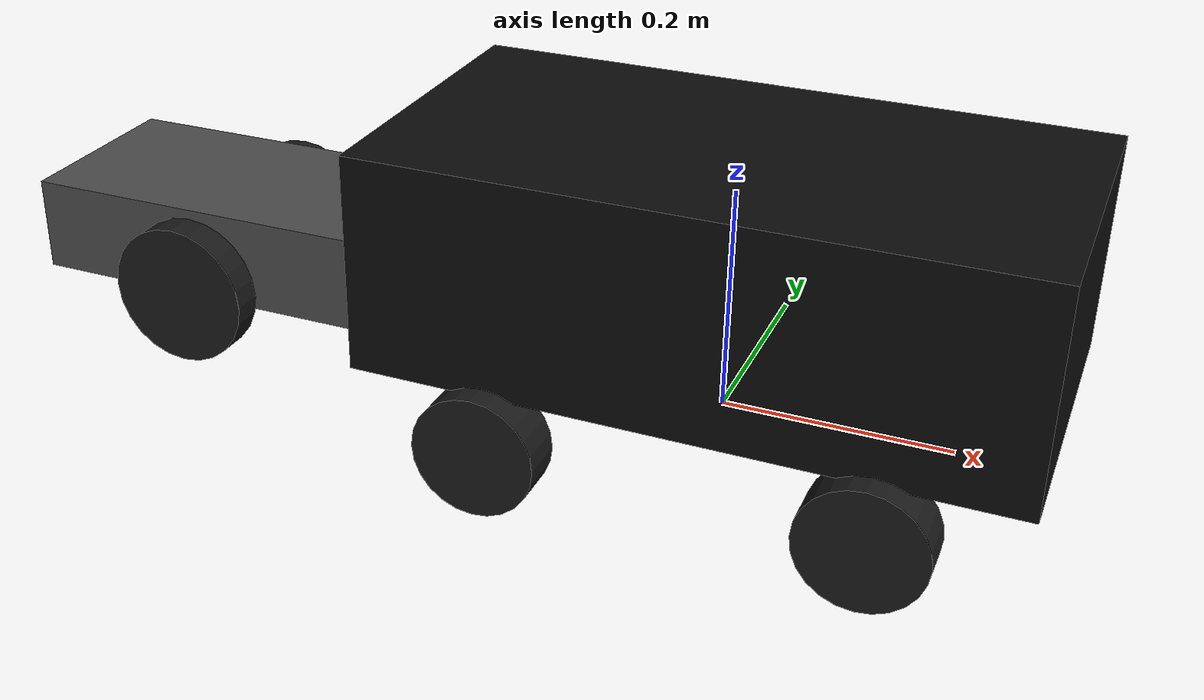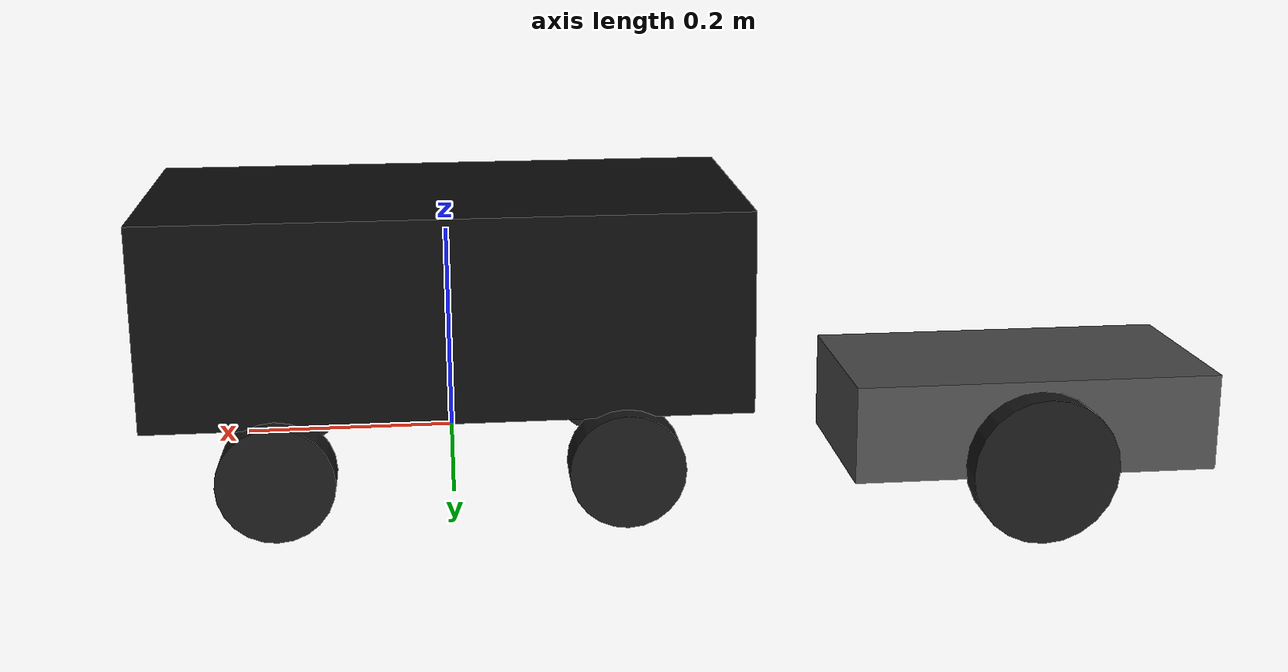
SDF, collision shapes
<?xml version="1.0"?>
<sdf version="1.8">
  <model name="traxxas">
    <self_collide>false</self_collide>
    <static>false</static>

    <link name="base_link">
      <gz_frame_id>traxxas/base_link</gz_frame_id>

      <inertial>
        <pose>0 0 0 0 0 0</pose>
        <!-- [MEDIR_3] Massa total com eletrônicos -->
        <!-- stock 2.28kg + Raspberry ~0.1kg + LiDAR ~0.17kg + controladora ~0.1kg + bateria ~0.3kg = ~3.0kg -->
        <mass>8.0</mass>
        <!-- Inércia caixa 0.568 x 0.296 x 0.193, m=3.0kg -->
        <!-- Ixx=(1/12)*3.0*(0.193²+0.296²) = 0.0310 -->
        <!-- Iyy=(1/12)*3.0*(0.568²+0.193²) = 0.0903 -->
        <!-- Izz=(1/12)*3.0*(0.568²+0.296²) = 0.1027 -->
        <inertia>
          <ixx>0.0310</ixx>
          <ixy>0</ixy>
          <ixz>0</ixz>
          <iyy>0.0903</iyy>
          <iyz>0</iyz>
          <izz>0.1027</izz>
        </inertia>
      </inertial>

      <!-- Colisão baseada nas dimensões reais -->
      <collision name="traxxas/BaseCollision">
        <!-- z = ground_clearance + height/2 = 0.047 + 0.0965 = 0.1435 -->
        <pose>0 0 0.1435 0 0 0</pose>
        <geometry>
          <box>
            <size>0.568 0.296 0.193</size>
          </box>
        </geometry>
        <surface>
          <friction>
            <ode>
              <!-- [MEDIR_4] -->
              <mu>0.5</mu>
              <mu2>0.5</mu2>
            </ode>
          </friction>
        </surface>
      </collision>

      <!-- ===== VISUAIS ===== -->

      <visual name="traxxas/CarroInteiroVisual">
        <pose>
        -0.35 -0.18 -0.1 1.5708 0 1.5708
        </pose>
        <geometry>
          <mesh>
            <uri>file:///home/lauraluna/ackermann_sim/src/ackermann-vehicle-gzsim-ros2/saye_description/models/traxxas/meshes/Traxxas_Nitro_Rustler.stl</uri>
            <scale>0.0015 0.0015 0.0015</scale>
          </mesh>
        </geometry>
        <material>
          <ambient>0.05 0.05 0.05 1</ambient>
          <diffuse>0.05 0.05 0.05 1</diffuse>
          <specular>0.2 0.2 0.2 1</specular>
        </material>
      </visual>

      <visual name="traxxas/LidarVisual">
        <pose>0.035 0.1 0.16 0 0 0</pose>
        <geometry>
          <cylinder><radius>0.038</radius><length>0.040</length></cylinder>
        </geometry>
        <material>
          <ambient>0.05 0.05 0.05 1</ambient>
          <diffuse>0.05 0.05 0.05 1</diffuse>
        </material>
      </visual>

      <!-- ===== SENSORES ===== -->

      <!-- IMU -->
      <sensor name="imu_sensor" type="imu">
        <always_on>1</always_on>
        <update_rate>250</update_rate>
        <topic>imu</topic>
        <imu>
          <enable_orientation>1</enable_orientation>
          <angular_velocity>
            <x><noise type="gaussian"><mean>0</mean><stddev>0.009</stddev><bias_mean>0.00075</bias_mean><bias_stddev>0.005</bias_stddev></noise></x>
            <y><noise type="gaussian"><mean>0</mean><stddev>0.009</stddev><bias_mean>0.00075</bias_mean><bias_stddev>0.005</bias_stddev></noise></y>
            <z><noise type="gaussian"><mean>0</mean><stddev>0.009</stddev><bias_mean>0.00075</bias_mean><bias_stddev>0.005</bias_stddev></noise></z>
          </angular_velocity>
          <linear_acceleration>
            <x><noise type="gaussian"><mean>0</mean><stddev>0.021</stddev><bias_mean>0.05</bias_mean><bias_stddev>0.0075</bias_stddev></noise></x>
            <y><noise type="gaussian"><mean>0</mean><stddev>0.021</stddev><bias_mean>0.05</bias_mean><bias_stddev>0.0075</bias_stddev></noise></y>
            <z><noise type="gaussian"><mean>0</mean><stddev>0.021</stddev><bias_mean>0.05</bias_mean><bias_stddev>0.0075</bias_stddev></noise></z>
          </linear_acceleration>
        </imu>
      </sensor>

      <!-- RPLidar C1 — 2D, 360°, 10Hz, 0.1–12m -->
      <!-- [MEDIR_1] z=0.228 estimado — medir altura real -->
      <sensor name="rplidar_c1" type="gpu_lidar">
        <pose>0 0 0.228 0 0 0</pose>
        <lidar>
          <scan>
            <horizontal>
              <samples>2400</samples>
              <resolution>1</resolution>
              <min_angle>-3.14159</min_angle>
              <max_angle>3.14159</max_angle>
            </horizontal>
            <vertical>
              <samples>1</samples>
              <resolution>1</resolution>
              <min_angle>0</min_angle>
              <max_angle>0</max_angle>
            </vertical>
          </scan>
          <range>
            <min>0.1</min>
            <max>12.0</max>
            <resolution>0.01</resolution>
          </range>
          <noise>
            <type>gaussian</type>
            <mean>0</mean>
            <stddev>0.01</stddev>
          </noise>
        </lidar>
        <gz_frame_id>traxxas/base_link/rplidar_c1</gz_frame_id>
        <topic>scan</topic>
        <visualize>true</visualize>
        <update_rate>10</update_rate>
      </sensor>

      <sensor name="realsense_d435" type="rgbd_camera">
        <pose>0.284 0 0.120 0 0 0</pose>
        <always_on>1</always_on>
        <update_rate>30</update_rate>
        <topic>realsense</topic>
        <gz_frame_id>traxxas/base_link/realsense_d435</gz_frame_id>
        <camera>
          <!-- RGB -->
          <horizontal_fov>1.5184</horizontal_fov>  <!-- 87° FOV da D435 -->
          <image>
            <width>640</width>
            <height>480</height>
            <format>RGB_INT8</format>
          </image>
          <!-- Profundidade -->
          <clip>
            <near>0.105</near>   <!-- mínimo D435: 10.5cm -->
            <far>10.0</far>      <!-- máximo prático: 10m -->
          </clip>
          <depth_camera>
            <output>depths</output>
          </depth_camera>
          <noise>
            <type>gaussian</type>
            <mean>0</mean>
            <stddev>0.005</stddev>
          </noise>
        </camera>
      </sensor>

    </link>

    <!-- ===== RODAS DIANTEIRAS ===== -->
    <!-- Traxxas: raio = 109.5mm/2 = 54.75mm, largura estimada ~43mm -->

    <link name="front_left_wheel_link">
      <pose relative_to="front_left_wheel_joint">0 0 0 0 0 0</pose>
      <inertial>
        <mass>0.15</mass>
        <inertia>
          <ixx>0.000120</ixx><ixy>0</ixy><ixz>0</ixz>
          <iyy>0.000120</iyy><iyz>0</iyz>
          <izz>0.000225</izz>
        </inertia>
      </inertial>
      <gravity>true</gravity>
      <visual name="traxxas/FrontLeftWheelVisual">
        <transparency>1</transparency>
        <pose>0 0 0 -1.5707 0 0</pose>
        <geometry>
          <cylinder><radius>0.05475</radius><length>0.043</length></cylinder>
        </geometry>
        <material>
          <ambient>0.1 0.1 0.1 1</ambient>
          <diffuse>0.1 0.1 0.1 1</diffuse>
        </material>
      </visual>
      <collision name="traxxas/FrontLeftWheelCollision">
        <pose>0 0 0 -1.5707 0 0</pose>
        <geometry>
          <cylinder><radius>0.05475</radius><length>0.043</length></cylinder>
        </geometry>
        <surface>
          <friction>
            <ode>
              <!-- [MEDIR_4] -->
              <mu>0.8</mu><mu2>1.2</mu2>
              <fdir1>0 0 1</fdir1>
            </ode>
          </friction>
        </surface>
      </collision>
    </link>

    <link name="front_left_wheel_steering_link">
      <pose relative_to="front_left_wheel_steering_joint">0 0 0 0 0 0</pose>
      <inertial>
        <mass>0.01</mass>
        <inertia><ixx>0.000004</ixx><iyy>0.000004</iyy><izz>0.000004</izz></inertia>
      </inertial>
    </link>

    <joint name="front_left_wheel_joint" type="revolute">
      <parent>front_left_wheel_steering_link</parent>
      <child>front_left_wheel_link</child>
      <pose relative_to="front_left_wheel_steering_joint">0 0 0 0 0 0</pose>
      <axis>
        <xyz>0 1 0</xyz>
        <limit><lower>-1.79769e+308</lower><upper>1.79769e+308</upper></limit>
        <dynamics><spring_reference>0</spring_reference><spring_stiffness>0</spring_stiffness></dynamics>
        <use_parent_model_frame>1</use_parent_model_frame>
      </axis>
    </joint>

    <!-- ===== SUSPENSÃO DIANTEIRA ESQUERDA ===== -->
    <link name="front_left_suspension_link">
      <pose relative_to="front_left_suspension_joint">0 0 0 0 0 0</pose>
      <inertial>
        <mass>0.02</mass>
        <inertia><ixx>0.000002</ixx><iyy>0.000002</iyy><izz>0.000002</izz></inertia>
      </inertial>
    </link>

    <joint name="front_left_suspension_joint" type="prismatic">
      <parent>base_link</parent>
      <child>front_left_suspension_link</child>
      <!-- x = wheelbase/2 = 0.162, y = track/2 = 0.148 -->
      <pose relative_to="base_link">0.162 0.148 0 0 0 0</pose>
      <axis>
        <xyz>0 0 1</xyz>
        <limit>
          <!-- [MEDIR_SUSP_1] curso do amortecedor real (Traxxas ~10-15mm) -->
          <lower>-0.015</lower>
          <upper>0.015</upper>
          <velocity>2.0</velocity>
          <effort>50</effort>
        </limit>
        <dynamics>
          <!-- [MEDIR_SUSP_2] calibrar com massa real por roda -->
          <damping>18.0</damping>
          <spring_stiffness>800</spring_stiffness>
          <spring_reference>0</spring_reference>
        </dynamics>
        <use_parent_model_frame>1</use_parent_model_frame>
      </axis>
    </joint>

    <joint name="front_left_wheel_steering_joint" type="revolute">
      <parent>front_left_suspension_link</parent>
      <child>front_left_wheel_steering_link</child>
      <pose relative_to="front_left_suspension_joint">0 0 0 0 0 0</pose>
      <axis>
        <xyz>0 0 1</xyz>
        <limit>
          <!-- [MEDIR_2] -->
          <lower>-0.5</lower><upper>0.5</upper>
          <velocity>1.0</velocity><effort>30</effort>
        </limit>
        <use_parent_model_frame>1</use_parent_model_frame>
      </axis>
    </joint>

    <link name="front_right_wheel_link">
      <pose relative_to="front_right_wheel_joint">0 0 0 0 0 0</pose>
      <inertial>
        <mass>0.15</mass>
        <inertia>
          <ixx>0.000120</ixx><ixy>0</ixy><ixz>0</ixz>
          <iyy>0.000120</iyy><iyz>0</iyz>
          <izz>0.000225</izz>
        </inertia>
      </inertial>
      <gravity>true</gravity>
      <visual name="traxxas/FrontRightWheelVisual">
        <transparency>1</transparency>
        <pose>0 0 0 -1.5707 0 0</pose>
        <geometry>
          <cylinder><radius>0.05475</radius><length>0.043</length></cylinder>
        </geometry>
        <material>
          <ambient>0.1 0.1 0.1 1</ambient>
          <diffuse>0.1 0.1 0.1 1</diffuse>
        </material>
      </visual>
      <collision name="traxxas/FrontRightWheelCollision">
        <pose>0 0 0 -1.5707 0 0</pose>
        <geometry>
          <cylinder><radius>0.05475</radius><length>0.043</length></cylinder>
        </geometry>
        <surface>
          <friction>
            <ode><mu>0.8</mu><mu2>1.2</mu2><fdir1>0 0 1</fdir1></ode>
          </friction>
        </surface>
      </collision>
    </link>

    <link name="front_right_wheel_steering_link">
      <pose relative_to="front_right_wheel_steering_joint">0 0 0 0 0 0</pose>
      <inertial>
        <mass>0.01</mass>
        <inertia><ixx>0.000004</ixx><iyy>0.000004</iyy><izz>0.000004</izz></inertia>
      </inertial>
    </link>

    <joint name="front_right_wheel_joint" type="revolute">
      <parent>front_right_wheel_steering_link</parent>
      <child>front_right_wheel_link</child>
      <pose relative_to="front_right_wheel_steering_joint">0 0 0 0 0 0</pose>
      <axis>
        <xyz>0 1 0</xyz>
        <limit><lower>-1.79769e+308</lower><upper>1.79769e+308</upper></limit>
        <dynamics><spring_reference>0</spring_reference><spring_stiffness>0</spring_stiffness></dynamics>
        <use_parent_model_frame>1</use_parent_model_frame>
      </axis>
    </joint>

    <!-- ===== SUSPENSÃO DIANTEIRA DIREITA ===== -->
    <link name="front_right_suspension_link">
      <pose relative_to="front_right_suspension_joint">0 0 0 0 0 0</pose>
      <inertial>
        <mass>0.02</mass>
        <inertia><ixx>0.000002</ixx><iyy>0.000002</iyy><izz>0.000002</izz></inertia>
      </inertial>
    </link>

    <joint name="front_right_suspension_joint" type="prismatic">
      <parent>base_link</parent>
      <child>front_right_suspension_link</child>
      <!-- x = wheelbase/2 = 0.162, y = -track/2 = -0.148 -->
      <pose relative_to="base_link">0.162 -0.148 0 0 0 0</pose>
      <axis>
        <xyz>0 0 1</xyz>
        <limit>
          <!-- [MEDIR_SUSP_1] curso do amortecedor real (Traxxas ~10-15mm) -->
          <lower>-0.015</lower>
          <upper>0.015</upper>
          <velocity>2.0</velocity>
          <effort>50</effort>
        </limit>
        <dynamics>
          <!-- [MEDIR_SUSP_2] calibrar com massa real por roda -->
          <damping>18.0</damping>
          <spring_stiffness>800</spring_stiffness>
          <spring_reference>0</spring_reference>
        </dynamics>
        <use_parent_model_frame>1</use_parent_model_frame>
      </axis>
    </joint>

    <joint name="front_right_wheel_steering_joint" type="revolute">
      <parent>front_right_suspension_link</parent>
      <child>front_right_wheel_steering_link</child>
      <pose relative_to="front_right_suspension_joint">0 0 0 0 0 0</pose>
      <axis>
        <xyz>0 0 1</xyz>
        <limit>
          <lower>-0.5</lower><upper>0.5</upper>
          <velocity>1.0</velocity><effort>30</effort>
        </limit>
        <use_parent_model_frame>1</use_parent_model_frame>
      </axis>
    </joint>

    <!-- ===== RODAS TRASEIRAS ===== -->

    <link name="rear_right_wheel_link">
      <pose relative_to="rear_right_wheel_joint">0 0 0 0 0 0</pose>
      <inertial>
        <mass>0.15</mass>
        <inertia>
          <ixx>0.000120</ixx><ixy>0</ixy><ixz>0</ixz>
          <iyy>0.000120</iyy><iyz>0</iyz>
          <izz>0.000225</izz>
        </inertia>
      </inertial>
      <gravity>true</gravity>
      <visual name="traxxas/RearRightWheelVisual">
        <transparency>1</transparency>
        <pose>0 0 0 -1.5707 0 0</pose>
        <geometry>
          <cylinder><radius>0.05475</radius><length>0.043</length></cylinder>
        </geometry>
        <material>
          <ambient>0.1 0.1 0.1 1</ambient>
          <diffuse>0.1 0.1 0.1 1</diffuse>
        </material>
      </visual>
      <collision name="traxxas/RearRightWheelCollision">
        <pose>0 0 0 -1.5707 0 0</pose>
        <geometry>
          <cylinder><radius>0.05475</radius><length>0.043</length></cylinder>
        </geometry>
        <surface>
          <friction>
            <ode><mu>0.8</mu><mu2>1.2</mu2><fdir1>0 0 1</fdir1></ode>
          </friction>
        </surface>
      </collision>
    </link>

    <!-- ===== SUSPENSÃO TRASEIRA DIREITA ===== -->
    <link name="rear_right_suspension_link">
      <pose relative_to="rear_right_suspension_joint">0 0 0 0 0 0</pose>
      <inertial>
        <mass>0.02</mass>
        <inertia><ixx>0.000002</ixx><iyy>0.000002</iyy><izz>0.000002</izz></inertia>
      </inertial>
    </link>

    <joint name="rear_right_suspension_joint" type="prismatic">
      <parent>base_link</parent>
      <child>rear_right_suspension_link</child>
      <!-- x = -wheelbase/2 = -0.162, y = -track/2 = -0.148 -->
      <pose relative_to="base_link">-0.162 -0.148 0 0 0 0</pose>
      <axis>
        <xyz>0 0 1</xyz>
        <limit>
          <!-- [MEDIR_SUSP_1] curso do amortecedor real (Traxxas ~10-15mm) -->
          <lower>-0.015</lower>
          <upper>0.015</upper>
          <velocity>2.0</velocity>
          <effort>50</effort>
        </limit>
        <dynamics>
          <!-- [MEDIR_SUSP_2] calibrar com massa real por roda -->
          <damping>18.0</damping>
          <spring_stiffness>800</spring_stiffness>
          <spring_reference>0</spring_reference>
        </dynamics>
        <use_parent_model_frame>1</use_parent_model_frame>
      </axis>
    </joint>

    <joint name="rear_right_wheel_joint" type="revolute">
      <parent>rear_right_suspension_link</parent>
      <child>rear_right_wheel_link</child>
      <pose relative_to="rear_right_suspension_joint">0 0 0 0 0 0</pose>
      <axis>
        <xyz>0 1 0</xyz>
        <limit><lower>-1.79769e+308</lower><upper>1.79769e+308</upper></limit>
        <dynamics><spring_reference>0</spring_reference><spring_stiffness>0</spring_stiffness></dynamics>
        <use_parent_model_frame>1</use_parent_model_frame>
      </axis>
    </joint>

    <link name="rear_left_wheel_link">
      <pose relative_to="rear_left_wheel_joint">0 0 0 0 0 0</pose>
      <inertial>
        <mass>0.15</mass>
        <inertia>
          <ixx>0.000120</ixx><ixy>0</ixy><ixz>0</ixz>
          <iyy>0.000120</iyy><iyz>0</iyz>
          <izz>0.000225</izz>
        </inertia>
      </inertial>
      <gravity>true</gravity>
      <visual name="traxxas/RearLeftWheelVisual">
        <transparency>1</transparency>
        <pose>0 0 0 -1.5707 0 0</pose>
        <geometry>
          <cylinder><radius>0.05475</radius><length>0.043</length></cylinder>
        </geometry>
        <material>
          <ambient>0.1 0.1 0.1 1</ambient>
          <diffuse>0.1 0.1 0.1 1</diffuse>
        </material>
      </visual>
      <collision name="traxxas/RearLeftWheelCollision">
        <pose>0 0 0 -1.5707 0 0</pose>
        <geometry>
          <cylinder><radius>0.05475</radius><length>0.043</length></cylinder>
        </geometry>
        <surface>
          <friction>
            <ode><mu>0.8</mu><mu2>1.2</mu2><fdir1>0 0 1</fdir1></ode>
          </friction>
        </surface>
      </collision>
    </link>

    <!-- ===== SUSPENSÃO TRASEIRA ESQUERDA ===== -->
    <link name="rear_left_suspension_link">
      <pose relative_to="rear_left_suspension_joint">0 0 0 0 0 0</pose>
      <inertial>
        <mass>0.02</mass>
        <inertia><ixx>0.000002</ixx><iyy>0.000002</iyy><izz>0.000002</izz></inertia>
      </inertial>
    </link>

    <joint name="rear_left_suspension_joint" type="prismatic">
      <parent>base_link</parent>
      <child>rear_left_suspension_link</child>
      <!-- x = -wheelbase/2 = -0.162, y = track/2 = 0.148 -->
      <pose relative_to="base_link">-0.162 0.148 0 0 0 0</pose>
      <axis>
        <xyz>0 0 1</xyz>
        <limit>
          <!-- [MEDIR_SUSP_1] curso do amortecedor real (Traxxas ~10-15mm) -->
          <lower>-0.015</lower>
          <upper>0.015</upper>
          <velocity>2.0</velocity>
          <effort>50</effort>
        </limit>
        <dynamics>
          <!-- [MEDIR_SUSP_2] calibrar com massa real por roda -->
          <damping>18.0</damping>
          <spring_stiffness>800</spring_stiffness>
          <spring_reference>0</spring_reference>
        </dynamics>
        <use_parent_model_frame>1</use_parent_model_frame>
      </axis>
    </joint>

    <joint name="rear_left_wheel_joint" type="revolute">
      <parent>rear_left_suspension_link</parent>
      <child>rear_left_wheel_link</child>
      <pose relative_to="rear_left_suspension_joint">0 0 0 0 0 0</pose>
      <axis>
        <xyz>0 1 0</xyz>
        <limit><lower>-1.79769e+308</lower><upper>1.79769e+308</upper></limit>
        <dynamics><spring_reference>0</spring_reference><spring_stiffness>0</spring_stiffness></dynamics>
        <use_parent_model_frame>1</use_parent_model_frame>
      </axis>
    </joint>

    <!-- ===== PLUGIN ACKERMANN ===== -->
    <plugin filename="gz-sim-ackermann-steering-system"
            name="gz::sim::systems::AckermannSteering">
      <left_joint>front_left_wheel_joint</left_joint>
      <left_joint>rear_left_wheel_joint</left_joint>
      <right_joint>front_right_wheel_joint</right_joint>
      <right_joint>rear_right_wheel_joint</right_joint>
      <left_steering_joint>front_left_wheel_steering_joint</left_steering_joint>
      <right_steering_joint>front_right_wheel_steering_joint</right_steering_joint>
      <!-- kingpin = track - wheel_width = 0.296 - 0.043 = 0.253 -->
      <kingpin_width>0.253</kingpin_width>
      <!-- [MEDIR_2] -->
      <steering_limit>0.5</steering_limit>
      <wheel_base>0.324</wheel_base>
      <wheel_separation>0.296</wheel_separation>
      <wheel_radius>0.05475</wheel_radius>
      <min_velocity>-1.5</min_velocity>
      <max_velocity>1.5</max_velocity>
      <min_acceleration>-3.0</min_acceleration>
      <max_acceleration>3.0</max_acceleration>
      <topic>/cmd_vel</topic>
    </plugin>

    <plugin filename="gz-sim-odometry-publisher-system"
            name="gz::sim::systems::OdometryPublisher">
      <odom_frame>odom</odom_frame>
      <robot_base_frame>traxxas</robot_base_frame>
      <odom_topic>odom</odom_topic>
      <dimensions>3</dimensions>
    </plugin>

    <plugin filename="gz-sim-joint-state-publisher-system"
            name="gz::sim::systems::JointStatePublisher">
    </plugin>

    <plugin filename="gz-sim-pose-publisher-system"
            name="gz::sim::systems::PosePublisher">
      <publish_link_pose>false</publish_link_pose>
      <publish_sensor_pose>true</publish_sensor_pose>
      <publish_model_pose>false</publish_model_pose>
      <use_pose_vector_msg>true</use_pose_vector_msg>
    </plugin>

    <plugin filename="gz-sim-joint-position-controller-system" name="gz::sim::systems::JointPositionController">
      <joint_name>uarm_shoulder_pan_joint</joint_name>
      <topic>/model/traxxas/uarm/shoulder_pan</topic>
    </plugin>
    <plugin filename="gz-sim-joint-position-controller-system" name="gz::sim::systems::JointPositionController">
      <joint_name>uarm_shoulder_lift_joint</joint_name>
      <topic>/model/traxxas/uarm/shoulder_lift</topic>
    </plugin>
    <plugin filename="gz-sim-joint-position-controller-system" name="gz::sim::systems::JointPositionController">
      <joint_name>uarm_elbow_joint</joint_name>
      <topic>/model/traxxas/uarm/elbow</topic>
    </plugin>
    <plugin filename="gz-sim-joint-position-controller-system" name="gz::sim::systems::JointPositionController">
      <joint_name>uarm_gripper_left_joint</joint_name>
      <topic>/model/traxxas/uarm/gripper_left</topic>
    </plugin>
    <plugin filename="gz-sim-joint-position-controller-system" name="gz::sim::systems::JointPositionController">
      <joint_name>uarm_gripper_right_joint</joint_name>
      <topic>/model/traxxas/uarm/gripper_right</topic>
    </plugin>

    <!-- ============================================================
         CARROCINHA EMBUTIDA NO MODELO DO TRAXXAS
         ============================================================ -->

    <!-- Gancho no Traxxas -->
    <link name="hitch_link">
      <pose>-0.264 0.1 0.035 0 0 0</pose>
      <inertial>
      <pose>0 0 0.1234 0 0 0</pose>
      <mass>0.15</mass>
      <!-- Inércias calculadas com massa 3.332kg -->
      <!-- Ixx=(1/12)*3.332*(0.09284²+0.1886²) = 0.02089 -->
      <!-- Iyy=(1/12)*3.332*(0.350²+0.09284²)  = 0.04323 -->
      <!-- Izz=(1/12)*3.332*(0.350²+0.1886²)   = 0.05231 -->
      <inertia>
        <ixx>0.00001</ixx><ixy>0</ixy><ixz>0</ixz>
        <iyy>0.00001</iyy><iyz>0</iyz>
        <izz>0.00001</izz>
      </inertia>
    </inertial>
      <visual name="hitch_ball_visual">
        <geometry>
          <sphere><radius>0.015</radius></sphere>
        </geometry>
        <material>
          <ambient>0.8 0.7 0.0 1</ambient>
          <diffuse>0.8 0.7 0.0 1</diffuse>
        </material>
      </visual>
    </link>

    <!-- Junta fixa do gancho ao chassi do Traxxas -->
    <joint name="hitch_to_chassis" type="fixed">
      <parent>base_link</parent>
      <child>hitch_link</child>
    </joint>

    <!-- Chassi da carrocinha -->
    <link name="trailer_base">
      <pose relative_to="hitch_link">-0.283 0 0 0 0 0</pose>
      <inertial>
        <mass>2.00</mass>
        <pose>0 0 0.05 0 0 0</pose>
        <inertia>
          <ixx>0.00737</ixx><ixy>0</ixy><ixz>0</ixz>
          <iyy>0.02185</iyy><iyz>0</iyz>
          <izz>0.02636</izz>
        </inertia>
      </inertial>
      <collision name="trailer_base_collision">
        <geometry>
          <box><size>0.350 0.1886 0.09284</size></box>
        </geometry>
      </collision>
      <visual name="trailer_base_visual">
        <pose>-0.2 0.05 -0.1 -1.5707 0 3.1</pose>
        <geometry>
          <mesh>
            <uri>file:///home/lauraluna/ackermann_sim/src/ackermann-vehicle-gzsim-ros2/saye_description/models/traxxas/meshes/Reboque(sem_roda).stl</uri>
            <scale>0.001 0.001 0.001</scale>
          </mesh>
        </geometry>
        <material>
          <ambient>0.3 0.3 0.3 1</ambient>
          <diffuse>0.3 0.3 0.3 1</diffuse>
          <specular>0.2 0.2 0.2 1</specular>
        </material>
      </visual>
      <!-- Haste de engate -->
      <visual name="hitch_bar_visual">
        <pose>0.229 0 0 0 0 0</pose>
        <geometry>
          <box><size>0.108 0.020 0.015</size></box>
        </geometry>
        <material>
          <ambient>0.15 0.15 0.15 1</ambient>
          <diffuse>0.15 0.15 0.15 1</diffuse>
        </material>
      </visual>

      <!-- uArm Swift Pro — mesh visual -->
      <visual name="uarm_visual">
        <pose>-0.08 0 0 0 0 0</pose>
        <geometry>
          <mesh>
            <uri>file:///home/lauraluna/ackermann_sim/src/ackermann-vehicle-gzsim-ros2/saye_description/models/traxxas/meshes/uarm.stl</uri>
            <scale>0.006 0.006 0.006</scale>
          </mesh>
        </geometry>
        <material>
          <ambient>0.7 0.7 0.7 1</ambient>
          <diffuse>0.7 0.7 0.7 1</diffuse>
          <specular>0.4 0.4 0.4 1</specular>
        </material>
      </visual>
    </link>

    <!-- Junta de engate — permite rotação em Z nas curvas -->
    <joint name="trailer_hitch_joint" type="universal">
      <parent>hitch_link</parent>
      <child>trailer_base</child>
      <pose relative_to="hitch_link">0 0 0 0 0 0</pose>
      <!-- Eixo 1: rotação em Z (vira para os lados nas curvas) -->
      <axis>
        <xyz>0 0 1</xyz>
        <limit>
          <lower>-0.785</lower>
          <upper>0.785</upper>
          <effort>100</effort>
          <velocity>1.0</velocity>
        </limit>
        <dynamics>
          <damping>2.0</damping>
          <friction>0.5</friction>
        </dynamics>
      </axis>
      <!-- Eixo 2: rotação em Y (sobe/desce independente do Traxxas) -->
      <axis2>
        <xyz>0 1 0</xyz>
        <limit>
          <lower>-0.3</lower>
          <upper>0.3</upper>
          <effort>100</effort>
          <velocity>1.0</velocity>
        </limit>
        <dynamics>
          <damping>2.0</damping>
          <friction>0.5</friction>
        </dynamics>
      </axis2>
    </joint>

    <!-- Roda esquerda da carrocinha -->
    <link name="trailer_wheel_left">
      <pose relative_to="trailer_base">0 0.110 -0.03254 0 0 0</pose>
      <inertial>
        <mass>0.334</mass>
        <inertia>
          <ixx>0.000584</ixx><ixy>0</ixy><ixz>0</ixz>
          <iyy>0.000584</iyy><iyz>0</iyz>
          <izz>0.000818</izz>
        </inertia>
      </inertial>
      <gravity>true</gravity>
      <visual name="trailer_wheel_left_visual">
        <pose>0 0 0 1.5707 0 0</pose>
        <geometry>
          <cylinder><radius>0.070</radius><length>0.030</length></cylinder>
        </geometry>
        <material>
          <ambient>0.1 0.1 0.1 1</ambient>
          <diffuse>0.1 0.1 0.1 1</diffuse>
        </material>
      </visual>
      <collision name="trailer_wheel_left_collision">
        <pose>0 0 0 1.5707 0 0</pose>
        <geometry>
          <cylinder><radius>0.070</radius><length>0.030</length></cylinder>
        </geometry>
        <surface>
          <friction>
            <ode><mu>0.8</mu><mu2>1.2</mu2></ode>
          </friction>
        </surface>
      </collision>
    </link>

    <joint name="trailer_wheel_left_joint" type="continuous">
      <parent>trailer_base</parent>
      <child>trailer_wheel_left</child>
      <axis>
        <xyz>0 1 0</xyz>
        <dynamics><damping>0.01</damping><friction>0.1</friction></dynamics>
      </axis>
    </joint>

    <!-- Roda direita da carrocinha -->
    <link name="trailer_wheel_right">
      <pose relative_to="trailer_base">0 -0.110 -0.03254 0 0 0</pose>
      <inertial>
        <mass>0.334</mass>
        <inertia>
          <ixx>0.000584</ixx><ixy>0</ixy><ixz>0</ixz>
          <iyy>0.000584</iyy><iyz>0</iyz>
          <izz>0.000818</izz>
        </inertia>
      </inertial>
      <gravity>true</gravity>
      <visual name="trailer_wheel_right_visual">
        <pose>0 0 0 1.5707 0 0</pose>
        <geometry>
          <cylinder><radius>0.070</radius><length>0.030</length></cylinder>
        </geometry>
        <material>
          <ambient>0.1 0.1 0.1 1</ambient>
          <diffuse>0.1 0.1 0.1 1</diffuse>
        </material>
      </visual>
      <collision name="trailer_wheel_right_collision">
        <pose>0 0 0 1.5707 0 0</pose>
        <geometry>
          <cylinder><radius>0.070</radius><length>0.030</length></cylinder>
        </geometry>
        <surface>
          <friction>
            <ode><mu>0.8</mu><mu2>1.2</mu2></ode>
          </friction>
        </surface>
      </collision>
    </link>

    <joint name="trailer_wheel_right_joint" type="continuous">
      <parent>trailer_base</parent>
      <child>trailer_wheel_right</child>
      <axis>
        <xyz>0 1 0</xyz>
        <dynamics><damping>0.01</damping><friction>0.1</friction></dynamics>
      </axis>
    </joint>

  </model>
</sdf>
